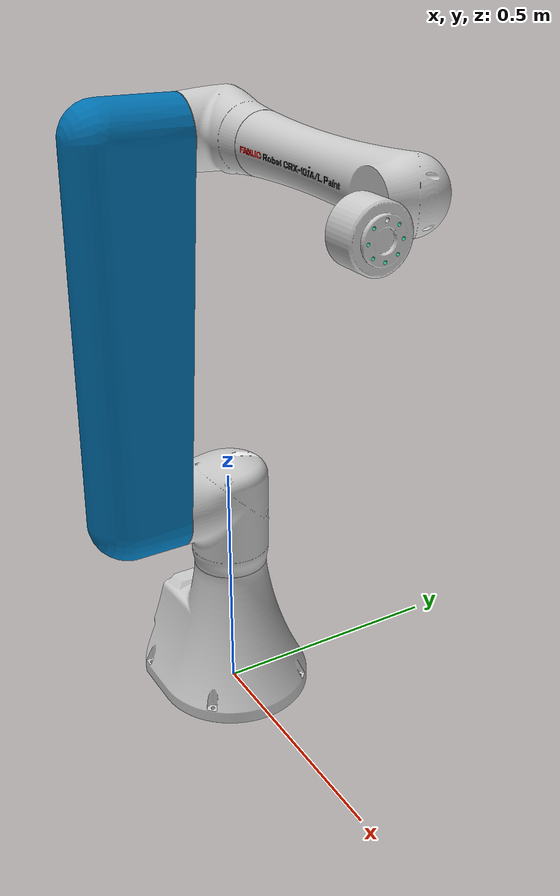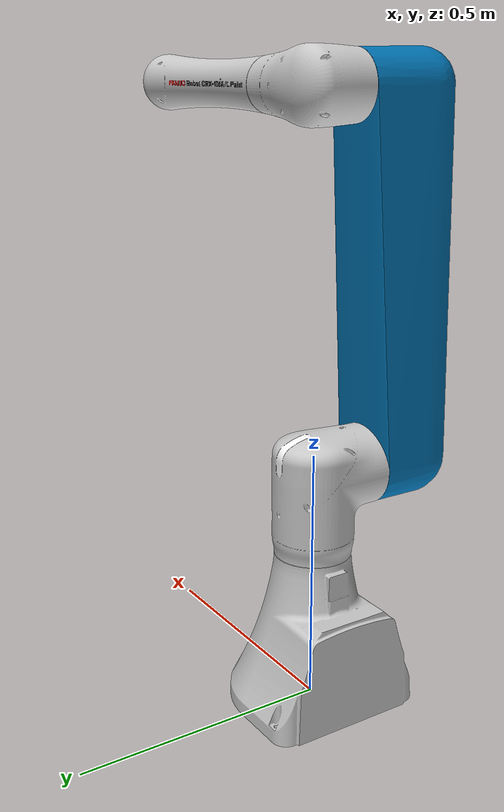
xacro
<?xml version="1.0" ?>
<robot name="crx10ia_lp" xmlns:xacro="http://wiki.ros.org/xacro">
  <xacro:include
    filename="$(find fanuc_crx_description)/urdf/crx10ia_lp_urdf_macro.xacro"
  />

  <link name="world" />
  <link name="ee_link" />
  <xacro:crx10ia_lp parent="world" child="ee_link">
    <origin xyz="0 0 0" rpy="0 0 0" />
  </xacro:crx10ia_lp>
</robot>

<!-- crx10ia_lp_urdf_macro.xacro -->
<!--
SPDX-FileCopyrightText: 2025, FANUC America Corporation
SPDX-FileCopyrightText: 2025, FANUC CORPORATION
SPDX-License-Identifier: Apache-2.0
-->
<!-- URDF for CRX-10iA/L Paint -->
<robot xmlns:xacro="http://wiki.ros.org/xacro">
  <xacro:macro
    name="crx10ia_lp"
    params="prefix=''
            parent
            *origin
            child"
  >

    <xacro:property name="j1_lower_limit" value="${radians(-179.9)}" />
    <xacro:property name="j2_lower_limit" value="${radians(-179.9)}" />
    <xacro:property name="j3_lower_limit" value="${radians(-270)}" />
    <xacro:property name="j4_lower_limit" value="${radians(-190)}" />
    <xacro:property name="j5_lower_limit" value="${radians(-179.9)}" />
    <xacro:property name="j6_lower_limit" value="${radians(-225)}" />

    <xacro:property name="j1_upper_limit" value="${radians( 179.9)}" />
    <xacro:property name="j2_upper_limit" value="${radians( 179.9)}" />
    <xacro:property name="j3_upper_limit" value="${radians( 270)}" />
    <xacro:property name="j4_upper_limit" value="${radians( 190)}" />
    <xacro:property name="j5_upper_limit" value="${radians( 179.9)}" />
    <xacro:property name="j6_upper_limit" value="${radians( 225)}" />

    <xacro:property name="j1_effort_limit" value="0" />
    <xacro:property name="j2_effort_limit" value="0" />
    <xacro:property name="j3_effort_limit" value="0" />
    <xacro:property name="j4_effort_limit" value="0" />
    <xacro:property name="j5_effort_limit" value="0" />
    <xacro:property name="j6_effort_limit" value="0" />

    <xacro:property name="j1_velocity_limit" value="${radians( 120)}" />
    <xacro:property name="j2_velocity_limit" value="${radians( 120)}" />
    <xacro:property name="j3_velocity_limit" value="${radians( 180)}" />
    <xacro:property name="j4_velocity_limit" value="${radians( 180)}" />
    <xacro:property name="j5_velocity_limit" value="${radians( 180)}" />
    <xacro:property name="j6_velocity_limit" value="${radians( 180)}" />

    <!-- links -->
    <link name="${prefix}base_link">
      <visual>
        <origin xyz="0 0 0" rpy="0 0 0" />
        <geometry>
          <mesh
            filename="package://fanuc_crx_description/meshes/crx10ia_lp/visual/base.dae"
          />
        </geometry>
      </visual>
      <collision>
        <origin xyz="0 0 0" rpy="0 0 0" />
        <geometry>
          <mesh
            filename="package://fanuc_crx_description/meshes/crx10ia_lp/collision/base.stl"
            scale="0.001 0.001 0.001"
          />
        </geometry>
      </collision>
    </link>

    <link name="${prefix}J1_link">
      <visual>
        <origin xyz="0 0 0" rpy="0 0 0" />
        <geometry>
          <mesh
            filename="package://fanuc_crx_description/meshes/crx10ia_lp/visual/j1.dae"
          />
        </geometry>
      </visual>
      <collision>
        <origin xyz="0 0 0" rpy="0 0 0" />
        <geometry>
          <mesh
            filename="package://fanuc_crx_description/meshes/crx10ia_lp/collision/j1.stl"
            scale="0.001 0.001 0.001"
          />
        </geometry>
      </collision>
    </link>

    <link name="${prefix}J2_link">
      <visual>
        <origin xyz="0 0 0" rpy="0 0 0" />
        <geometry>
          <mesh
            filename="package://fanuc_crx_description/meshes/crx10ia_lp/visual/j2.dae"
          />
        </geometry>
      </visual>
      <collision>
        <origin xyz="0 0 0" rpy="0 0 0" />
        <geometry>
          <mesh
            filename="package://fanuc_crx_description/meshes/crx10ia_lp/collision/j2.stl"
            scale="0.001 0.001 0.001"
          />
        </geometry>
      </collision>
    </link>

    <link name="${prefix}J3_link">
      <visual>
        <origin xyz="0 0 0" rpy="0 0 0" />
        <geometry>
          <mesh
            filename="package://fanuc_crx_description/meshes/crx10ia_lp/visual/j3.dae"
          />
        </geometry>
      </visual>
      <collision>
        <origin xyz="0 0 0" rpy="0 0 0" />
        <geometry>
          <mesh
            filename="package://fanuc_crx_description/meshes/crx10ia_lp/collision/j3.stl"
            scale="0.001 0.001 0.001"
          />
        </geometry>
      </collision>
    </link>

    <link name="${prefix}J4_link">
      <visual>
        <origin xyz="0 0 0" rpy="0 0 0" />
        <geometry>
          <mesh
            filename="package://fanuc_crx_description/meshes/crx10ia_lp/visual/j4.dae"
          />
        </geometry>
      </visual>
      <collision>
        <origin xyz="0 0 0" rpy="0 0 0" />
        <geometry>
          <mesh
            filename="package://fanuc_crx_description/meshes/crx10ia_lp/collision/j4.stl"
            scale="0.001 0.001 0.001"
          />
        </geometry>
      </collision>
    </link>

    <link name="${prefix}J5_link">
      <visual>
        <origin xyz="0 0 0" rpy="0 0 0" />
        <geometry>
          <mesh
            filename="package://fanuc_crx_description/meshes/crx10ia_lp/visual/j5.dae"
          />
        </geometry>
      </visual>
      <collision>
        <origin xyz="0 0 0" rpy="0 0 0" />
        <geometry>
          <mesh
            filename="package://fanuc_crx_description/meshes/crx10ia_lp/collision/j5.stl"
            scale="0.001 0.001 0.001"
          />
        </geometry>
      </collision>
    </link>

    <link name="${prefix}J6_link">
      <visual>
        <origin xyz="0 0 0" rpy="0 0 0" />
        <geometry>
          <mesh
            filename="package://fanuc_crx_description/meshes/crx10ia_lp/visual/j6.dae"
          />
        </geometry>
      </visual>
      <collision>
        <origin xyz="0 0 0" rpy="0 0 0" />
        <geometry>
          <mesh
            filename="package://fanuc_crx_description/meshes/crx10ia_lp/collision/j6.stl"
            scale="0.001 0.001 0.001"
          />
        </geometry>
      </collision>
    </link>

    <!-- joints -->
    <joint name="${prefix}J1" type="revolute">
      <origin xyz=" 0  0  .465" rpy="0 0 0" />
      <parent link="${prefix}base_link" />
      <child link="${prefix}J1_link" />
      <axis xyz=" 0  0  1" />
      <limit
        lower="${j1_lower_limit}"
        upper="${j1_upper_limit}"
        effort="${j1_effort_limit}"
        velocity="${j1_velocity_limit}"
      />
    </joint>

    <joint name="${prefix}J2" type="revolute">
      <origin xyz=" 0  0  0" rpy="0 0 0" />
      <parent link="${prefix}J1_link" />
      <child link="${prefix}J2_link" />
      <axis xyz=" 0  1  0" />
      <limit
        lower="${j2_lower_limit}"
        upper="${j2_upper_limit}"
        effort="${j2_effort_limit}"
        velocity="${j2_velocity_limit}"
      />
    </joint>

    <joint name="${prefix}J3" type="revolute">
      <origin xyz=" 0  0  .71" rpy="0 0 0" />
      <parent link="${prefix}J2_link" />
      <child link="${prefix}J3_link" />
      <axis xyz=" 0 -1  0" />
      <limit
        lower="${j3_lower_limit}"
        upper="${j3_upper_limit}"
        effort="${j3_effort_limit}"
        velocity="${j3_velocity_limit}"
      />
    </joint>

    <joint name="${prefix}J4" type="revolute">
      <origin xyz=" 0  0  0" rpy="0 0 0" />
      <parent link="${prefix}J3_link" />
      <child link="${prefix}J4_link" />
      <axis xyz="-1  0  0" />
      <limit
        lower="${j4_lower_limit}"
        upper="${j4_upper_limit}"
        effort="${j4_effort_limit}"
        velocity="${j4_velocity_limit}"
      />
    </joint>

    <joint name="${prefix}J5" type="revolute">
      <origin xyz=" .54  0  0" rpy="0 0 0" />
      <parent link="${prefix}J4_link" />
      <child link="${prefix}J5_link" />
      <axis xyz=" 0 -1  0" />
      <limit
        lower="${j5_lower_limit}"
        upper="${j5_upper_limit}"
        effort="${j5_effort_limit}"
        velocity="${j5_velocity_limit}"
      />
    </joint>

    <joint name="${prefix}J6" type="revolute">
      <origin xyz=" 0 -.15  0" rpy="0 0 0" />
      <parent link="${prefix}J5_link" />
      <child link="${prefix}J6_link" />
      <axis xyz="-1  0  0" />
      <limit
        lower="${j6_lower_limit}"
        upper="${j6_upper_limit}"
        effort="${j6_effort_limit}"
        velocity="${j6_velocity_limit}"
      />
    </joint>

    <!-- world coords -->
    <link name="${prefix}wbase" />
    <joint name="${prefix}base_link-wbase" type="fixed">
      <origin xyz=" 0  0  .465" rpy="0 0 0" />
      <parent link="${prefix}base_link" />
      <child link="${prefix}wbase" />
    </joint>

    <!-- flange coords -->
    <link name="${prefix}flange" />
    <joint name="${prefix}J6-flange" type="fixed">
      <origin xyz=" .16  0  0" rpy="0 0 0" />
      <parent link="${prefix}J6_link" />
      <child link="${prefix}flange" />
    </joint>

    <!-- Attach to parent -->
    <joint name="${prefix}base_joint" type="fixed">
      <xacro:insert_block name="origin" />
      <parent link="${parent}" />
      <child link="${prefix}base_link" />
    </joint>

    <!-- Attach child -->
    <joint name="${prefix}child_joint" type="fixed">
      <origin xyz="0 0 0" rpy="0 0 0" />
      <parent link="${prefix}flange" />
      <child link="${child}" />
    </joint>
  </xacro:macro>
</robot>
